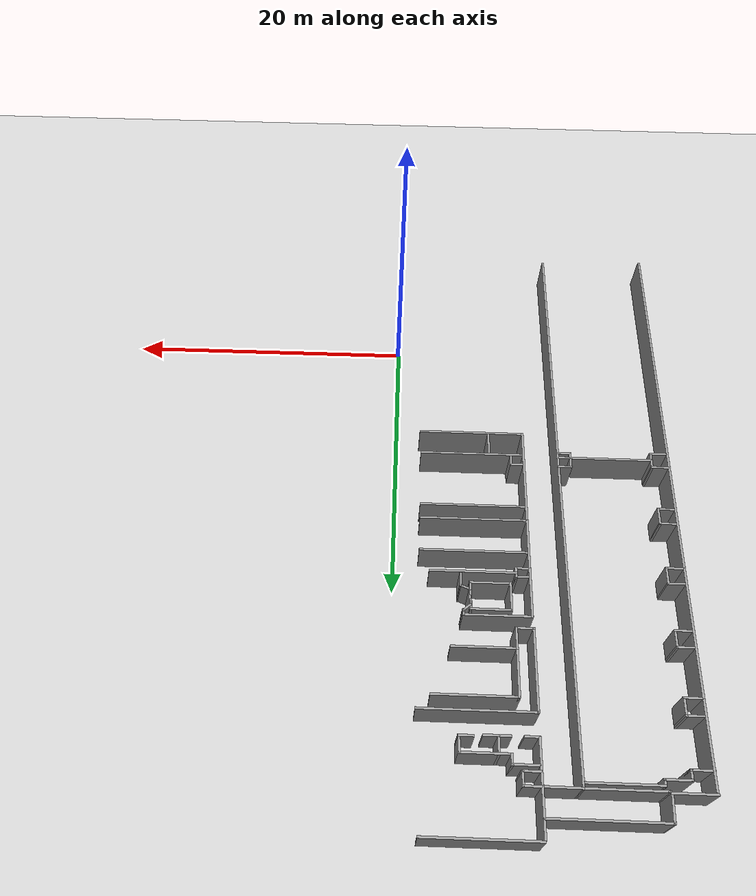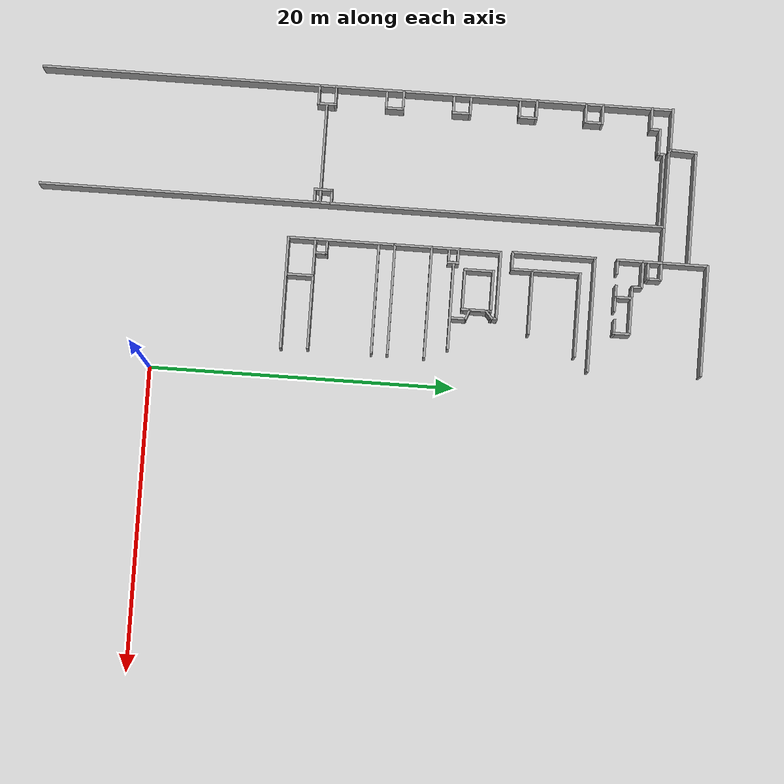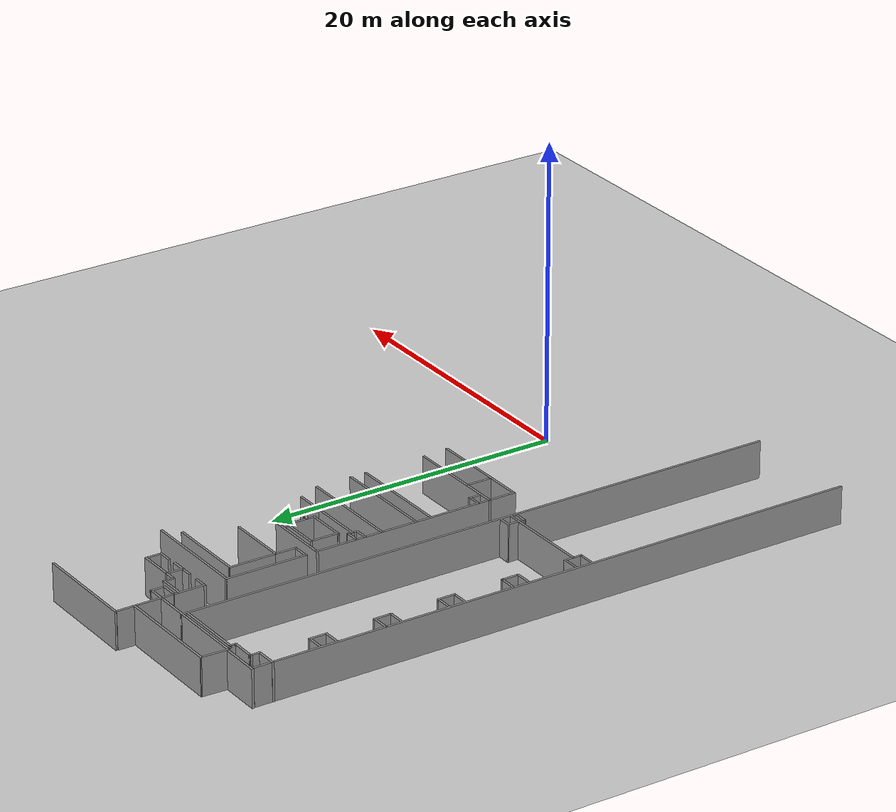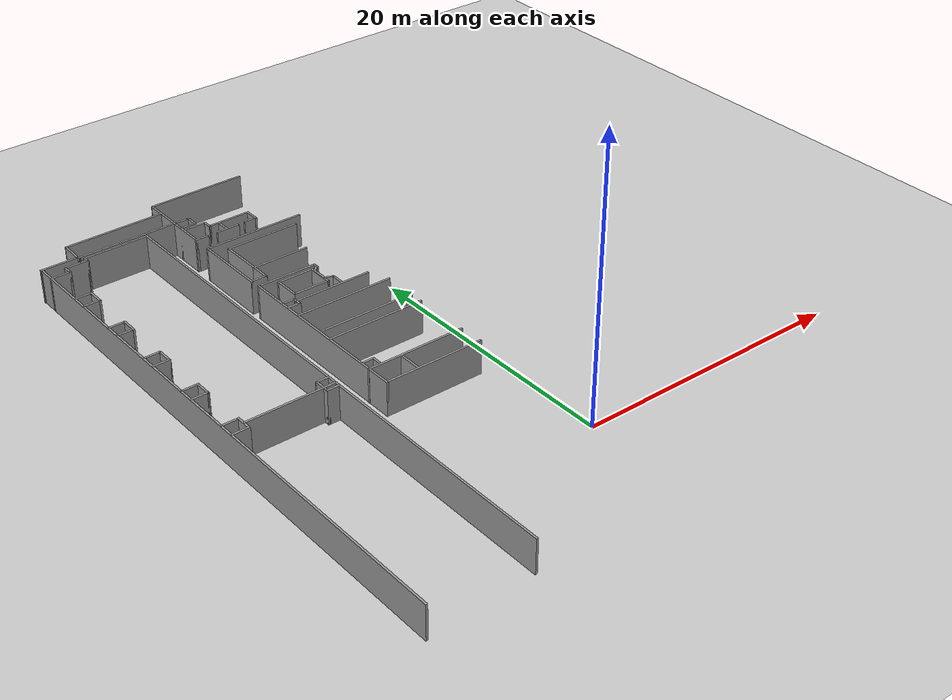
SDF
<sdf version="1.7">
 <world name="default">
  <model name="ground_plane">
   <static>1</static>
   <link name="link">
    <collision name="collision">
     <geometry><plane><normal>0 0 1</normal><size>100 100</size></plane></geometry>
     <surface>
      <contact><collide_bitmask>65535</collide_bitmask></contact>
      <friction><ode><mu>100</mu><mu2>50</mu2></ode></friction>
     </surface>
    </collision>
    <visual name="visual">
     <cast_shadows>0</cast_shadows>
     <geometry><plane><normal>0 0 1</normal><size>100 100</size></plane></geometry>
     <material>
      <script><uri>file://media/materials/scripts/gazebo.material</uri><name>Gazebo/Grey</name></script>
     </material>
    </visual>
   </link>
  </model>
  <model name="Tsudanuma_2-3-without_door">
   <pose>11.8595 12.3796 0 0 -0 0</pose>
   <link name="Wall_0">
    <collision name="Wall_0_Collision">
     <geometry><box><size>41.115 0.15 2.5</size></box></geometry>
     <pose>0 0 1.25 0 -0 0</pose>
    </collision>
    <visual name="Wall_0_Visual">
     <pose>0 0 1.25 0 -0 0</pose>
     <geometry><box><size>41.115 0.15 2.5</size></box></geometry>
     <material>
      <script><uri>file://media/materials/scripts/gazebo.material</uri><name>Gazebo/Grey</name></script>
      <ambient>1 1 1 1</ambient>
     </material>
     <meta><layer>0</layer></meta>
    </visual>
    <pose>-30.8385 -0.07469 0 0 -0 -1.5708</pose>
   </link>
   <link name="Wall_102">
    <collision name="Wall_102_Collision">
     <geometry><box><size>1.25 0.15 2.5</size></box></geometry>
     <pose>0 0 1.25 0 -0 0</pose>
    </collision>
    <visual name="Wall_102_Visual">
     <pose>0 0 1.25 0 -0 0</pose>
     <geometry><box><size>1.25 0.15 2.5</size></box></geometry>
     <material>
      <script><uri>file://media/materials/scripts/gazebo.material</uri><name>Gazebo/Grey</name></script>
      <ambient>1 1 1 1</ambient>
     </material>
     <meta><layer>0</layer></meta>
    </visual>
    <pose>-20.2708 10.8167 0 0 -0 0</pose>
   </link>
   <link name="Wall_103">
    <collision name="Wall_103_Collision">
     <geometry><box><size>1.5 0.15 2.5</size></box></geometry>
     <pose>0 0 1.25 0 -0 0</pose>
    </collision>
    <visual name="Wall_103_Visual">
     <pose>0 0 1.25 0 -0 0</pose>
     <geometry><box><size>1.5 0.15 2.5</size></box></geometry>
     <material>
      <script><uri>file://media/materials/scripts/gazebo.material</uri><name>Gazebo/Grey</name></script>
      <ambient>1 1 1 1</ambient>
     </material>
     <meta><layer>0</layer></meta>
    </visual>
    <pose>-19.7208 11.4917 0 0 -0 1.5708</pose>
   </link>
   <link name="Wall_104">
    <collision name="Wall_104_Collision">
     <geometry><box><size>4.25 0.15 2.5</size></box></geometry>
     <pose>0 0 1.25 0 -0 0</pose>
    </collision>
    <visual name="Wall_104_Visual">
     <pose>0 0 1.25 0 -0 0</pose>
     <geometry><box><size>4.25 0.15 2.5</size></box></geometry>
     <material>
      <script><uri>file://media/materials/scripts/gazebo.material</uri><name>Gazebo/Grey</name></script>
      <ambient>1 1 1 1</ambient>
     </material>
     <meta><layer>0</layer></meta>
    </visual>
    <pose>-17.6708 12.1667 0 0 -0 0</pose>
   </link>
   <link name="Wall_106">
    <collision name="Wall_106_Collision">
     <geometry><box><size>3.25 0.15 2.5</size></box></geometry>
     <pose>0 0 1.25 0 -0 0</pose>
    </collision>
    <visual name="Wall_106_Visual">
     <pose>0 0 1.25 0 -0 0</pose>
     <geometry><box><size>3.25 0.15 2.5</size></box></geometry>
     <material>
      <script><uri>file://media/materials/scripts/gazebo.material</uri><name>Gazebo/Grey</name></script>
      <ambient>1 1 1 1</ambient>
     </material>
     <meta><layer>0</layer></meta>
    </visual>
    <pose>-19.7208 13.7167 0 0 -0 1.5708</pose>
   </link>
   <link name="Wall_107">
    <collision name="Wall_107_Collision">
     <geometry><box><size>5.5 0.15 2.5</size></box></geometry>
     <pose>0 0 1.25 0 -0 0</pose>
    </collision>
    <visual name="Wall_107_Visual">
     <pose>0 0 1.25 0 -0 0</pose>
     <geometry><box><size>5.5 0.15 2.5</size></box></geometry>
     <material>
      <script><uri>file://media/materials/scripts/gazebo.material</uri><name>Gazebo/Grey</name></script>
      <ambient>1 1 1 1</ambient>
     </material>
     <meta><layer>0</layer></meta>
    </visual>
    <pose>-17.0458 15.2667 0 0 -0 0</pose>
   </link>
   <link name="Wall_114">
    <collision name="Wall_114_Collision">
     <geometry><box><size>7.5 0.15 2.5</size></box></geometry>
     <pose>0 0 1.25 0 -0 0</pose>
    </collision>
    <visual name="Wall_114_Visual">
     <pose>0 0 1.25 0 -0 0</pose>
     <geometry><box><size>7.5 0.15 2.5</size></box></geometry>
     <material>
      <script><uri>file://media/materials/scripts/gazebo.material</uri><name>Gazebo/Grey</name></script>
      <ambient>1 1 1 1</ambient>
     </material>
     <meta><layer>0</layer></meta>
    </visual>
    <pose>-17.1458 16.1667 0 0 -0 0</pose>
   </link>
   <link name="Wall_116">
    <collision name="Wall_116_Collision">
     <geometry><box><size>0.715508 0.15 2.5</size></box></geometry>
     <pose>0 0 1.25 0 -0 0</pose>
    </collision>
    <visual name="Wall_116_Visual">
     <pose>0 0 1.25 0 -0 0</pose>
     <geometry><box><size>0.715508 0.15 2.5</size></box></geometry>
     <material>
      <script><uri>file://media/materials/scripts/gazebo.material</uri><name>Gazebo/Grey</name></script>
      <ambient>1 1 1 1</ambient>
     </material>
     <meta><layer>0</layer></meta>
    </visual>
    <pose>-16.6297 9.54241 0 0 -0 0.731865</pose>
   </link>
   <link name="Wall_118">
    <collision name="Wall_118_Collision">
     <geometry><box><size>0.5 0.15 2.5</size></box></geometry>
     <pose>0 0 1.25 0 -0 0</pose>
    </collision>
    <visual name="Wall_118_Visual">
     <pose>0 0 1.25 0 -0 0</pose>
     <geometry><box><size>0.5 0.15 2.5</size></box></geometry>
     <material>
      <script><uri>file://media/materials/scripts/gazebo.material</uri><name>Gazebo/Grey</name></script>
      <ambient>1 1 1 1</ambient>
     </material>
     <meta><layer>0</layer></meta>
    </visual>
    <pose>-16.4194 9.84917 0 0 -0 1.5708</pose>
   </link>
   <link name="Wall_119">
    <collision name="Wall_119_Collision">
     <geometry><box><size>4.5 0.15 2.5</size></box></geometry>
     <pose>0 0 1.25 0 -0 0</pose>
    </collision>
    <visual name="Wall_119_Visual">
     <pose>0 0 1.25 0 -0 0</pose>
     <geometry><box><size>4.5 0.15 2.5</size></box></geometry>
     <material>
      <script><uri>file://media/materials/scripts/gazebo.material</uri><name>Gazebo/Grey</name></script>
      <ambient>1 1 1 1</ambient>
     </material>
     <meta><layer>0</layer></meta>
    </visual>
    <pose>-18.5944 10.0242 0 0 -0 3.14159</pose>
   </link>
   <link name="Wall_120">
    <collision name="Wall_120_Collision">
     <geometry><box><size>14 0.15 2.5</size></box></geometry>
     <pose>0 0 1.25 0 -0 0</pose>
    </collision>
    <visual name="Wall_120_Visual">
     <pose>0 0 1.25 0 -0 0</pose>
     <geometry><box><size>14 0.15 2.5</size></box></geometry>
     <material>
      <script><uri>file://media/materials/scripts/gazebo.material</uri><name>Gazebo/Grey</name></script>
      <ambient>1 1 1 1</ambient>
     </material>
     <meta><layer>0</layer></meta>
    </visual>
    <pose>-20.7694 3.09917 0 0 -0 -1.5708</pose>
   </link>
   <link name="Wall_121">
    <collision name="Wall_121_Collision">
     <geometry><box><size>7.32925 0.15 2.5</size></box></geometry>
     <pose>0 0 1.25 0 -0 0</pose>
    </collision>
    <visual name="Wall_121_Visual">
     <pose>0 0 1.25 0 -0 0</pose>
     <geometry><box><size>7.32925 0.15 2.5</size></box></geometry>
     <material>
      <script><uri>file://media/materials/scripts/gazebo.material</uri><name>Gazebo/Grey</name></script>
      <ambient>1 1 1 1</ambient>
     </material>
     <meta><layer>0</layer></meta>
    </visual>
    <pose>-17.1797 -3.82583 0 0 -0 0</pose>
   </link>
   <link name="Wall_124">
    <collision name="Wall_124_Collision">
     <geometry><box><size>0.765048 0.15 2.5</size></box></geometry>
     <pose>0 0 1.25 0 -0 0</pose>
    </collision>
    <visual name="Wall_124_Visual">
     <pose>0 0 1.25 0 -0 0</pose>
     <geometry><box><size>0.765048 0.15 2.5</size></box></geometry>
     <material>
      <script><uri>file://media/materials/scripts/gazebo.material</uri><name>Gazebo/Grey</name></script>
      <ambient>1 1 1 1</ambient>
     </material>
     <meta><layer>0</layer></meta>
    </visual>
    <pose>-16.5547 8.13882 0 0 -0 2.75957</pose>
   </link>
   <link name="Wall_128">
    <collision name="Wall_128_Collision">
     <geometry><box><size>1.25 0.15 2.5</size></box></geometry>
     <pose>0 0 1.25 0 -0 0</pose>
    </collision>
    <visual name="Wall_128_Visual">
     <pose>0 0 1.25 0 -0 0</pose>
     <geometry><box><size>1.25 0.15 2.5</size></box></geometry>
     <material>
      <script><uri>file://media/materials/scripts/gazebo.material</uri><name>Gazebo/Grey</name></script>
      <ambient>1 1 1 1</ambient>
     </material>
     <meta><layer>0</layer></meta>
    </visual>
    <pose>-16.8401 8.80346 0 0 -0 1.5708</pose>
   </link>
   <link name="Wall_130">
    <collision name="Wall_130_Collision">
     <geometry><box><size>7.25 0.15 2.5</size></box></geometry>
     <pose>0 0 1.25 0 -0 0</pose>
    </collision>
    <visual name="Wall_130_Visual">
     <pose>0 0 1.25 0 -0 0</pose>
     <geometry><box><size>7.25 0.15 2.5</size></box></geometry>
     <material>
      <script><uri>file://media/materials/scripts/gazebo.material</uri><name>Gazebo/Grey</name></script>
      <ambient>1 1 1 1</ambient>
     </material>
     <meta><layer>0</layer></meta>
    </visual>
    <pose>-17.2305 -2.06927 0 0 -0 0</pose>
   </link>
   <link name="Wall_132">
    <collision name="Wall_132_Collision">
     <geometry><box><size>1 0.15 2.5</size></box></geometry>
     <pose>0 0 1.25 0 -0 0</pose>
    </collision>
    <visual name="Wall_132_Visual">
     <pose>0 0 1.25 0 -0 0</pose>
     <geometry><box><size>1 0.15 2.5</size></box></geometry>
     <material>
      <script><uri>file://media/materials/scripts/gazebo.material</uri><name>Gazebo/Grey</name></script>
      <ambient>1 1 1 1</ambient>
     </material>
     <meta><layer>0</layer></meta>
    </visual>
    <pose>-20.3175 -1.29143 0 0 -0 0</pose>
   </link>
   <link name="Wall_133">
    <collision name="Wall_133_Collision">
     <geometry><box><size>0.75 0.15 2.5</size></box></geometry>
     <pose>0 0 1.25 0 -0 0</pose>
    </collision>
    <visual name="Wall_133_Visual">
     <pose>0 0 1.25 0 -0 0</pose>
     <geometry><box><size>0.75 0.15 2.5</size></box></geometry>
     <material>
      <script><uri>file://media/materials/scripts/gazebo.material</uri><name>Gazebo/Grey</name></script>
      <ambient>1 1 1 1</ambient>
     </material>
     <meta><layer>0</layer></meta>
    </visual>
    <pose>-19.8925 -1.59143 0 0 -0 -1.5708</pose>
   </link>
   <link name="Wall_138">
    <collision name="Wall_138_Collision">
     <geometry><box><size>1.75 0.15 2.5</size></box></geometry>
     <pose>0 0 1.25 0 -0 0</pose>
    </collision>
    <visual name="Wall_138_Visual">
     <pose>0 0 1.25 0 -0 0</pose>
     <geometry><box><size>1.75 0.15 2.5</size></box></geometry>
     <material>
      <script><uri>file://media/materials/scripts/gazebo.material</uri><name>Gazebo/Grey</name></script>
      <ambient>1 1 1 1</ambient>
     </material>
     <meta><layer>0</layer></meta>
    </visual>
    <pose>-18.3711 -2.90721 0 0 -0 -1.5708</pose>
   </link>
   <link name="Wall_18">
    <collision name="Wall_18_Collision">
     <geometry><box><size>7.25 0.15 2.5</size></box></geometry>
     <pose>0 0 1.25 0 -0 0</pose>
    </collision>
    <visual name="Wall_18_Visual">
     <pose>0 0 1.25 0 -0 0</pose>
     <geometry><box><size>7.25 0.15 2.5</size></box></geometry>
     <material>
      <script><uri>file://media/materials/scripts/gazebo.material</uri><name>Gazebo/Grey</name></script>
      <ambient>1 1 1 1</ambient>
     </material>
     <meta><layer>0</layer></meta>
    </visual>
    <pose>-17.2221 23.51 0 0 -0 3.14159</pose>
   </link>
   <link name="Wall_22">
    <collision name="Wall_22_Collision">
     <geometry><box><size>2.8 0.15 2.5</size></box></geometry>
     <pose>0 0 1.25 0 -0 0</pose>
    </collision>
    <visual name="Wall_22_Visual">
     <pose>0 0 1.25 0 -0 0</pose>
     <geometry><box><size>2.8 0.15 2.5</size></box></geometry>
     <material>
      <script><uri>file://media/materials/scripts/gazebo.material</uri><name>Gazebo/Grey</name></script>
      <ambient>1 1 1 1</ambient>
     </material>
     <meta><layer>0</layer></meta>
    </visual>
    <pose>-29.553 20.5846 0 0 -0 3.14159</pose>
   </link>
   <link name="Wall_32">
    <collision name="Wall_32_Collision">
     <geometry><box><size>40.75 0.15 2.5</size></box></geometry>
     <pose>0 0 1.25 0 -0 0</pose>
    </collision>
    <visual name="Wall_32_Visual">
     <pose>0 0 1.25 0 -0 0</pose>
     <geometry><box><size>40.75 0.15 2.5</size></box></geometry>
     <material>
      <script><uri>file://media/materials/scripts/gazebo.material</uri><name>Gazebo/Grey</name></script>
      <ambient>1 1 1 1</ambient>
     </material>
     <meta><layer>0</layer></meta>
    </visual>
    <pose>-23.1721 0.089962 0 0 -0 1.5708</pose>
   </link>
   <link name="Wall_38">
    <collision name="Wall_38_Collision">
     <geometry><box><size>1 0.15 2.5</size></box></geometry>
     <pose>0 0 1.25 0 -0 0</pose>
    </collision>
    <visual name="Wall_38_Visual">
     <pose>0 0 1.25 0 -0 0</pose>
     <geometry><box><size>1 0.15 2.5</size></box></geometry>
     <material>
      <script><uri>file://media/materials/scripts/gazebo.material</uri><name>Gazebo/Grey</name></script>
      <ambient>1 1 1 1</ambient>
     </material>
     <meta><layer>0</layer></meta>
    </visual>
    <pose>-20.3843 17.647 0 0 -0 3.14159</pose>
   </link>
   <link name="Wall_39">
    <collision name="Wall_39_Collision">
     <geometry><box><size>3 0.15 2.5</size></box></geometry>
     <pose>0 0 1.25 0 -0 0</pose>
    </collision>
    <visual name="Wall_39_Visual">
     <pose>0 0 1.25 0 -0 0</pose>
     <geometry><box><size>3 0.15 2.5</size></box></geometry>
     <material>
      <script><uri>file://media/materials/scripts/gazebo.material</uri><name>Gazebo/Grey</name></script>
      <ambient>1 1 1 1</ambient>
     </material>
     <meta><layer>0</layer></meta>
    </visual>
    <pose>-20.8093 19.072 0 0 -0 1.5708</pose>
   </link>
   <link name="Wall_40">
    <collision name="Wall_40_Collision">
     <geometry><box><size>2.49537 0.15 2.5</size></box></geometry>
     <pose>0 0 1.25 0 -0 0</pose>
    </collision>
    <visual name="Wall_40_Visual">
     <pose>0 0 1.25 0 -0 0</pose>
     <geometry><box><size>2.49537 0.15 2.5</size></box></geometry>
     <material>
      <script><uri>file://media/materials/scripts/gazebo.material</uri><name>Gazebo/Grey</name></script>
      <ambient>1 1 1 1</ambient>
     </material>
     <meta><layer>0</layer></meta>
    </visual>
    <pose>-21.9819 20.5016 0 0 -0 3.13764</pose>
   </link>
   <link name="Wall_42">
    <collision name="Wall_42_Collision">
     <geometry><box><size>3.05 0.15 2.5</size></box></geometry>
     <pose>0 0 1.25 0 -0 0</pose>
    </collision>
    <visual name="Wall_42_Visual">
     <pose>0 0 1.25 0 -0 0</pose>
     <geometry><box><size>3.05 0.15 2.5</size></box></geometry>
     <material>
      <script><uri>file://media/materials/scripts/gazebo.material</uri><name>Gazebo/Grey</name></script>
      <ambient>1 1 1 1</ambient>
     </material>
     <meta><layer>0</layer></meta>
    </visual>
    <pose>-20.8093 21.947 0 0 -0 1.5708</pose>
   </link>
   <link name="Wall_44">
    <collision name="Wall_44_Collision">
     <geometry><box><size>1.75 0.15 2.5</size></box></geometry>
     <pose>0 0 1.25 0 -0 0</pose>
    </collision>
    <visual name="Wall_44_Visual">
     <pose>0 0 1.25 0 -0 0</pose>
     <geometry><box><size>1.75 0.15 2.5</size></box></geometry>
     <material>
      <script><uri>file://media/materials/scripts/gazebo.material</uri><name>Gazebo/Grey</name></script>
      <ambient>1 1 1 1</ambient>
     </material>
     <meta><layer>0</layer></meta>
    </visual>
    <pose>-18.3034 17.647 0 0 -0 0</pose>
   </link>
   <link name="Wall_468">
    <collision name="Wall_468_Collision">
     <geometry><box><size>1.25 0.15 2.5</size></box></geometry>
     <pose>0 0 1.25 0 -0 0</pose>
    </collision>
    <visual name="Wall_468_Visual">
     <pose>0 0 1.25 0 -0 0</pose>
     <geometry><box><size>1.25 0.15 2.5</size></box></geometry>
     <material>
      <script><uri>file://media/materials/scripts/gazebo.material</uri><name>Gazebo/Grey</name></script>
      <ambient>1 1 1 1</ambient>
     </material>
     <meta><layer>0</layer></meta>
    </visual>
    <pose>-30.2135 -2.5084 0 0 -0 0</pose>
   </link>
   <link name="Wall_470">
    <collision name="Wall_470_Collision">
     <geometry><box><size>1.25 0.15 2.5</size></box></geometry>
     <pose>0 0 1.25 0 -0 0</pose>
    </collision>
    <visual name="Wall_470_Visual">
     <pose>0 0 1.25 0 -0 0</pose>
     <geometry><box><size>1.25 0.15 2.5</size></box></geometry>
     <material>
      <script><uri>file://media/materials/scripts/gazebo.material</uri><name>Gazebo/Grey</name></script>
      <ambient>1 1 1 1</ambient>
     </material>
     <meta><layer>0</layer></meta>
    </visual>
    <pose>-29.6635 -1.9584 0 0 -0 1.5708</pose>
   </link>
   <link name="Wall_471">
    <collision name="Wall_471_Collision">
     <geometry><box><size>1.25 0.15 2.5</size></box></geometry>
     <pose>0 0 1.25 0 -0 0</pose>
    </collision>
    <visual name="Wall_471_Visual">
     <pose>0 0 1.25 0 -0 0</pose>
     <geometry><box><size>1.25 0.15 2.5</size></box></geometry>
     <material>
      <script><uri>file://media/materials/scripts/gazebo.material</uri><name>Gazebo/Grey</name></script>
      <ambient>1 1 1 1</ambient>
     </material>
     <meta><layer>0</layer></meta>
    </visual>
    <pose>-30.2135 -1.4084 0 0 -0 3.14159</pose>
   </link>
   <link name="Wall_474">
    <collision name="Wall_474_Collision">
     <geometry><box><size>1.25 0.15 2.5</size></box></geometry>
     <pose>0 0 1.25 0 -0 0</pose>
    </collision>
    <visual name="Wall_474_Visual">
     <pose>0 0 1.25 0 -0 0</pose>
     <geometry><box><size>1.25 0.15 2.5</size></box></geometry>
     <material>
      <script><uri>file://media/materials/scripts/gazebo.material</uri><name>Gazebo/Grey</name></script>
      <ambient>1 1 1 1</ambient>
     </material>
     <meta><layer>0</layer></meta>
    </visual>
    <pose>-30.2299 1.90612 0 0 -0 0</pose>
   </link>
   <link name="Wall_475">
    <collision name="Wall_475_Collision">
     <geometry><box><size>1.25 0.15 2.5</size></box></geometry>
     <pose>0 0 1.25 0 -0 0</pose>
    </collision>
    <visual name="Wall_475_Visual">
     <pose>0 0 1.25 0 -0 0</pose>
     <geometry><box><size>1.25 0.15 2.5</size></box></geometry>
     <material>
      <script><uri>file://media/materials/scripts/gazebo.material</uri><name>Gazebo/Grey</name></script>
      <ambient>1 1 1 1</ambient>
     </material>
     <meta><layer>0</layer></meta>
    </visual>
    <pose>-29.6799 2.45612 0 0 -0 1.5708</pose>
   </link>
   <link name="Wall_476">
    <collision name="Wall_476_Collision">
     <geometry><box><size>1.25 0.15 2.5</size></box></geometry>
     <pose>0 0 1.25 0 -0 0</pose>
    </collision>
    <visual name="Wall_476_Visual">
     <pose>0 0 1.25 0 -0 0</pose>
     <geometry><box><size>1.25 0.15 2.5</size></box></geometry>
     <material>
      <script><uri>file://media/materials/scripts/gazebo.material</uri><name>Gazebo/Grey</name></script>
      <ambient>1 1 1 1</ambient>
     </material>
     <meta><layer>0</layer></meta>
    </visual>
    <pose>-30.2299 3.00612 0 0 -0 3.14159</pose>
   </link>
   <link name="Wall_478">
    <collision name="Wall_478_Collision">
     <geometry><box><size>1.25 0.15 2.5</size></box></geometry>
     <pose>0 0 1.25 0 -0 0</pose>
    </collision>
    <visual name="Wall_478_Visual">
     <pose>0 0 1.25 0 -0 0</pose>
     <geometry><box><size>1.25 0.15 2.5</size></box></geometry>
     <material>
      <script><uri>file://media/materials/scripts/gazebo.material</uri><name>Gazebo/Grey</name></script>
      <ambient>1 1 1 1</ambient>
     </material>
     <meta><layer>0</layer></meta>
    </visual>
    <pose>-30.2299 6.30419 0 0 -0 0</pose>
   </link>
   <link name="Wall_479">
    <collision name="Wall_479_Collision">
     <geometry><box><size>1.25 0.15 2.5</size></box></geometry>
     <pose>0 0 1.25 0 -0 0</pose>
    </collision>
    <visual name="Wall_479_Visual">
     <pose>0 0 1.25 0 -0 0</pose>
     <geometry><box><size>1.25 0.15 2.5</size></box></geometry>
     <material>
      <script><uri>file://media/materials/scripts/gazebo.material</uri><name>Gazebo/Grey</name></script>
      <ambient>1 1 1 1</ambient>
     </material>
     <meta><layer>0</layer></meta>
    </visual>
    <pose>-29.6799 6.85419 0 0 -0 1.5708</pose>
   </link>
   <link name="Wall_480">
    <collision name="Wall_480_Collision">
     <geometry><box><size>1.25 0.15 2.5</size></box></geometry>
     <pose>0 0 1.25 0 -0 0</pose>
    </collision>
    <visual name="Wall_480_Visual">
     <pose>0 0 1.25 0 -0 0</pose>
     <geometry><box><size>1.25 0.15 2.5</size></box></geometry>
     <material>
      <script><uri>file://media/materials/scripts/gazebo.material</uri><name>Gazebo/Grey</name></script>
      <ambient>1 1 1 1</ambient>
     </material>
     <meta><layer>0</layer></meta>
    </visual>
    <pose>-30.2299 7.40419 0 0 -0 3.14159</pose>
   </link>
   <link name="Wall_482">
    <collision name="Wall_482_Collision">
     <geometry><box><size>1.25 0.15 2.5</size></box></geometry>
     <pose>0 0 1.25 0 -0 0</pose>
    </collision>
    <visual name="Wall_482_Visual">
     <pose>0 0 1.25 0 -0 0</pose>
     <geometry><box><size>1.25 0.15 2.5</size></box></geometry>
     <material>
      <script><uri>file://media/materials/scripts/gazebo.material</uri><name>Gazebo/Grey</name></script>
      <ambient>1 1 1 1</ambient>
     </material>
     <meta><layer>0</layer></meta>
    </visual>
    <pose>-30.2381 10.6201 0 0 -0 0</pose>
   </link>
   <link name="Wall_483">
    <collision name="Wall_483_Collision">
     <geometry><box><size>1.25 0.15 2.5</size></box></geometry>
     <pose>0 0 1.25 0 -0 0</pose>
    </collision>
    <visual name="Wall_483_Visual">
     <pose>0 0 1.25 0 -0 0</pose>
     <geometry><box><size>1.25 0.15 2.5</size></box></geometry>
     <material>
      <script><uri>file://media/materials/scripts/gazebo.material</uri><name>Gazebo/Grey</name></script>
      <ambient>1 1 1 1</ambient>
     </material>
     <meta><layer>0</layer></meta>
    </visual>
    <pose>-29.6881 11.1701 0 0 -0 1.5708</pose>
   </link>
   <link name="Wall_484">
    <collision name="Wall_484_Collision">
     <geometry><box><size>1.25 0.15 2.5</size></box></geometry>
     <pose>0 0 1.25 0 -0 0</pose>
    </collision>
    <visual name="Wall_484_Visual">
     <pose>0 0 1.25 0 -0 0</pose>
     <geometry><box><size>1.25 0.15 2.5</size></box></geometry>
     <material>
      <script><uri>file://media/materials/scripts/gazebo.material</uri><name>Gazebo/Grey</name></script>
      <ambient>1 1 1 1</ambient>
     </material>
     <meta><layer>0</layer></meta>
    </visual>
    <pose>-30.2381 11.7201 0 0 -0 3.14159</pose>
   </link>
   <link name="Wall_486">
    <collision name="Wall_486_Collision">
     <geometry><box><size>1.25 0.15 2.5</size></box></geometry>
     <pose>0 0 1.25 0 -0 0</pose>
    </collision>
    <visual name="Wall_486_Visual">
     <pose>0 0 1.25 0 -0 0</pose>
     <geometry><box><size>1.25 0.15 2.5</size></box></geometry>
     <material>
      <script><uri>file://media/materials/scripts/gazebo.material</uri><name>Gazebo/Grey</name></script>
      <ambient>1 1 1 1</ambient>
     </material>
     <meta><layer>0</layer></meta>
    </visual>
    <pose>-30.2217 14.9359 0 0 -0 0</pose>
   </link>
   <link name="Wall_487">
    <collision name="Wall_487_Collision">
     <geometry><box><size>1.25 0.15 2.5</size></box></geometry>
     <pose>0 0 1.25 0 -0 0</pose>
    </collision>
    <visual name="Wall_487_Visual">
     <pose>0 0 1.25 0 -0 0</pose>
     <geometry><box><size>1.25 0.15 2.5</size></box></geometry>
     <material>
      <script><uri>file://media/materials/scripts/gazebo.material</uri><name>Gazebo/Grey</name></script>
      <ambient>1 1 1 1</ambient>
     </material>
     <meta><layer>0</layer></meta>
    </visual>
    <pose>-29.6717 15.4859 0 0 -0 1.5708</pose>
   </link>
   <link name="Wall_488">
    <collision name="Wall_488_Collision">
     <geometry><box><size>1.25 0.15 2.5</size></box></geometry>
     <pose>0 0 1.25 0 -0 0</pose>
    </collision>
    <visual name="Wall_488_Visual">
     <pose>0 0 1.25 0 -0 0</pose>
     <geometry><box><size>1.25 0.15 2.5</size></box></geometry>
     <material>
      <script><uri>file://media/materials/scripts/gazebo.material</uri><name>Gazebo/Grey</name></script>
      <ambient>1 1 1 1</ambient>
     </material>
     <meta><layer>0</layer></meta>
    </visual>
    <pose>-30.2217 16.0359 0 0 -0 3.14159</pose>
   </link>
   <link name="Wall_49">
    <collision name="Wall_49_Collision">
     <geometry><box><size>1.75 0.15 2.5</size></box></geometry>
     <pose>0 0 1.25 0 -0 0</pose>
    </collision>
    <visual name="Wall_49_Visual">
     <pose>0 0 1.25 0 -0 0</pose>
     <geometry><box><size>1.75 0.15 2.5</size></box></geometry>
     <material>
      <script><uri>file://media/materials/scripts/gazebo.material</uri><name>Gazebo/Grey</name></script>
      <ambient>1 1 1 1</ambient>
     </material>
     <meta><layer>0</layer></meta>
    </visual>
    <pose>-19.9221 19.3029 0 0 -0 0</pose>
   </link>
   <link name="Wall_490">
    <collision name="Wall_490_Collision">
     <geometry><box><size>1.5 0.15 2.5</size></box></geometry>
     <pose>0 0 1.25 0 -0 0</pose>
    </collision>
    <visual name="Wall_490_Visual">
     <pose>0 0 1.25 0 -0 0</pose>
     <geometry><box><size>1.5 0.15 2.5</size></box></geometry>
     <material>
      <script><uri>file://media/materials/scripts/gazebo.material</uri><name>Gazebo/Grey</name></script>
      <ambient>1 1 1 1</ambient>
     </material>
     <meta><layer>0</layer></meta>
    </visual>
    <pose>-30.1789 19.2353 0 0 -0 0</pose>
   </link>
   <link name="Wall_491">
    <collision name="Wall_491_Collision">
     <geometry><box><size>0.75 0.15 2.5</size></box></geometry>
     <pose>0 0 1.25 0 -0 0</pose>
    </collision>
    <visual name="Wall_491_Visual">
     <pose>0 0 1.25 0 -0 0</pose>
     <geometry><box><size>0.75 0.15 2.5</size></box></geometry>
     <material>
      <script><uri>file://media/materials/scripts/gazebo.material</uri><name>Gazebo/Grey</name></script>
      <ambient>1 1 1 1</ambient>
     </material>
     <meta><layer>0</layer></meta>
    </visual>
    <pose>-29.5039 19.5353 0 0 -0 1.5708</pose>
   </link>
   <link name="Wall_492">
    <collision name="Wall_492_Collision">
     <geometry><box><size>1.75 0.15 2.5</size></box></geometry>
     <pose>0 0 1.25 0 -0 0</pose>
    </collision>
    <visual name="Wall_492_Visual">
     <pose>0 0 1.25 0 -0 0</pose>
     <geometry><box><size>1.75 0.15 2.5</size></box></geometry>
     <material>
      <script><uri>file://media/materials/scripts/gazebo.material</uri><name>Gazebo/Grey</name></script>
      <ambient>1 1 1 1</ambient>
     </material>
     <meta><layer>0</layer></meta>
    </visual>
    <pose>-28.7039 19.8353 0 0 -0 0</pose>
   </link>
   <link name="Wall_493">
    <collision name="Wall_493_Collision">
     <geometry><box><size>0.5 0.15 2.5</size></box></geometry>
     <pose>0 0 1.25 0 -0 0</pose>
    </collision>
    <visual name="Wall_493_Visual">
     <pose>0 0 1.25 0 -0 0</pose>
     <geometry><box><size>0.5 0.15 2.5</size></box></geometry>
     <material>
      <script><uri>file://media/materials/scripts/gazebo.material</uri><name>Gazebo/Grey</name></script>
      <ambient>1 1 1 1</ambient>
     </material>
     <meta><layer>0</layer></meta>
    </visual>
    <pose>-27.9039 20.0103 0 0 -0 1.5708</pose>
   </link>
   <link name="Wall_494">
    <collision name="Wall_494_Collision">
     <geometry><box><size>4.75 0.15 2.5</size></box></geometry>
     <pose>0 0 1.25 0 -0 0</pose>
    </collision>
    <visual name="Wall_494_Visual">
     <pose>0 0 1.25 0 -0 0</pose>
     <geometry><box><size>4.75 0.15 2.5</size></box></geometry>
     <material>
      <script><uri>file://media/materials/scripts/gazebo.material</uri><name>Gazebo/Grey</name></script>
      <ambient>1 1 1 1</ambient>
     </material>
     <meta><layer>0</layer></meta>
    </visual>
    <pose>-25.6039 20.1853 0 0 -0 0</pose>
   </link>
   <link name="Wall_496">
    <collision name="Wall_496_Collision">
     <geometry><box><size>5.111 0.15 2.5</size></box></geometry>
     <pose>0 0 1.25 0 -0 0</pose>
    </collision>
    <visual name="Wall_496_Visual">
     <pose>0 0 1.25 0 -0 0</pose>
     <geometry><box><size>5.111 0.15 2.5</size></box></geometry>
     <material>
      <script><uri>file://media/materials/scripts/gazebo.material</uri><name>Gazebo/Grey</name></script>
      <ambient>1 1 1 1</ambient>
     </material>
     <meta><layer>0</layer></meta>
    </visual>
    <pose>-25.6356 20.5062 0 0 -0 3.14159</pose>
   </link>
   <link name="Wall_498">
    <collision name="Wall_498_Collision">
     <geometry><box><size>0.286168 0.15 2.5</size></box></geometry>
     <pose>0 0 1.25 0 -0 0</pose>
    </collision>
    <visual name="Wall_498_Visual">
     <pose>0 0 1.25 0 -0 0</pose>
     <geometry><box><size>0.286168 0.15 2.5</size></box></geometry>
     <material>
      <script><uri>file://media/materials/scripts/gazebo.material</uri><name>Gazebo/Grey</name></script>
      <ambient>1 1 1 1</ambient>
     </material>
     <meta><layer>0</layer></meta>
    </visual>
    <pose>-28.1723 20.5454 0 0 -0 2.52842</pose>
   </link>
   <link name="Wall_50">
    <collision name="Wall_50_Collision">
     <geometry><box><size>0.75 0.15 2.5</size></box></geometry>
     <pose>0 0 1.25 0 -0 0</pose>
    </collision>
    <visual name="Wall_50_Visual">
     <pose>0 0 1.25 0 -0 0</pose>
     <geometry><box><size>0.75 0.15 2.5</size></box></geometry>
     <material>
      <script><uri>file://media/materials/scripts/gazebo.material</uri><name>Gazebo/Grey</name></script>
      <ambient>1 1 1 1</ambient>
     </material>
     <meta><layer>0</layer></meta>
    </visual>
    <pose>-19.1221 19.0029 0 0 -0 -1.5708</pose>
   </link>
   <link name="Wall_503">
    <collision name="Wall_503_Collision">
     <geometry><box><size>1 0.15 2.5</size></box></geometry>
     <pose>0 0 1.25 0 -0 0</pose>
    </collision>
    <visual name="Wall_503_Visual">
     <pose>0 0 1.25 0 -0 0</pose>
     <geometry><box><size>1 0.15 2.5</size></box></geometry>
     <material>
      <script><uri>file://media/materials/scripts/gazebo.material</uri><name>Gazebo/Grey</name></script>
      <ambient>1 1 1 1</ambient>
     </material>
     <meta><layer>0</layer></meta>
    </visual>
    <pose>-23.6051 -1.22621 0 0 -0 3.14159</pose>
   </link>
   <link name="Wall_504">
    <collision name="Wall_504_Collision">
     <geometry><box><size>1.25 0.15 2.5</size></box></geometry>
     <pose>0 0 1.25 0 -0 0</pose>
    </collision>
    <visual name="Wall_504_Visual">
     <pose>0 0 1.25 0 -0 0</pose>
     <geometry><box><size>1.25 0.15 2.5</size></box></geometry>
     <material>
      <script><uri>file://media/materials/scripts/gazebo.material</uri><name>Gazebo/Grey</name></script>
      <ambient>1 1 1 1</ambient>
     </material>
     <meta><layer>0</layer></meta>
    </visual>
    <pose>-24.0301 -1.77621 0 0 -0 -1.5708</pose>
   </link>
   <link name="Wall_505">
    <collision name="Wall_505_Collision">
     <geometry><box><size>1 0.15 2.5</size></box></geometry>
     <pose>0 0 1.25 0 -0 0</pose>
    </collision>
    <visual name="Wall_505_Visual">
     <pose>0 0 1.25 0 -0 0</pose>
     <geometry><box><size>1 0.15 2.5</size></box></geometry>
     <material>
      <script><uri>file://media/materials/scripts/gazebo.material</uri><name>Gazebo/Grey</name></script>
      <ambient>1 1 1 1</ambient>
     </material>
     <meta><layer>0</layer></meta>
    </visual>
    <pose>-23.6051 -2.32621 0 0 -0 0</pose>
   </link>
   <link name="Wall_508">
    <collision name="Wall_508_Collision">
     <geometry><box><size>7.5 0.15 2.5</size></box></geometry>
     <pose>0 0 1.25 0 -0 0</pose>
    </collision>
    <visual name="Wall_508_Visual">
     <pose>0 0 1.25 0 -0 0</pose>
     <geometry><box><size>7.5 0.15 2.5</size></box></geometry>
     <material>
      <script><uri>file://media/materials/scripts/gazebo.material</uri><name>Gazebo/Grey</name></script>
      <ambient>1 1 1 1</ambient>
     </material>
     <meta><layer>0</layer></meta>
    </visual>
    <pose>-24.4875 22.2557 0 0 -0 3.14159</pose>
   </link>
   <link name="Wall_509">
    <collision name="Wall_509_Collision">
     <geometry><box><size>1.82235 0.15 2.5</size></box></geometry>
     <pose>0 0 1.25 0 -0 0</pose>
    </collision>
    <visual name="Wall_509_Visual">
     <pose>0 0 1.25 0 -0 0</pose>
     <geometry><box><size>1.82235 0.15 2.5</size></box></geometry>
     <material>
      <script><uri>file://media/materials/scripts/gazebo.material</uri><name>Gazebo/Grey</name></script>
      <ambient>1 1 1 1</ambient>
     </material>
     <meta><layer>0</layer></meta>
    </visual>
    <pose>-28.1953 21.4201 0 0 -0 -1.60995</pose>
   </link>
   <link name="Wall_51">
    <collision name="Wall_51_Collision">
     <geometry><box><size>3.25 0.15 2.5</size></box></geometry>
     <pose>0 0 1.25 0 -0 0</pose>
    </collision>
    <visual name="Wall_51_Visual">
     <pose>0 0 1.25 0 -0 0</pose>
     <geometry><box><size>3.25 0.15 2.5</size></box></geometry>
     <material>
      <script><uri>file://media/materials/scripts/gazebo.material</uri><name>Gazebo/Grey</name></script>
      <ambient>1 1 1 1</ambient>
     </material>
     <meta><layer>0</layer></meta>
    </visual>
    <pose>-17.5721 18.7029 0 0 -0 0</pose>
   </link>
   <link name="Wall_511">
    <collision name="Wall_511_Collision">
     <geometry><box><size>7.25 0.15 2.5</size></box></geometry>
     <pose>0 0 1.25 0 -0 0</pose>
    </collision>
    <visual name="Wall_511_Visual">
     <pose>0 0 1.25 0 -0 0</pose>
     <geometry><box><size>7.25 0.15 2.5</size></box></geometry>
     <material>
      <script><uri>file://media/materials/scripts/gazebo.material</uri><name>Gazebo/Grey</name></script>
      <ambient>1 1 1 1</ambient>
     </material>
     <meta><layer>0</layer></meta>
    </visual>
    <pose>-17.2038 3.11898 0 0 -0 0</pose>
   </link>
   <link name="Wall_513">
    <collision name="Wall_513_Collision">
     <geometry><box><size>7.25 0.15 2.5</size></box></geometry>
     <pose>0 0 1.25 0 -0 0</pose>
    </collision>
    <visual name="Wall_513_Visual">
     <pose>0 0 1.25 0 -0 0</pose>
     <geometry><box><size>7.25 0.15 2.5</size></box></geometry>
     <material>
      <script><uri>file://media/materials/scripts/gazebo.material</uri><name>Gazebo/Grey</name></script>
      <ambient>1 1 1 1</ambient>
     </material>
     <meta><layer>0</layer></meta>
    </visual>
    <pose>-17.2038 2.07237 0 0 -0 0</pose>
   </link>
   <link name="Wall_515">
    <collision name="Wall_515_Collision">
     <geometry><box><size>7.25 0.15 2.5</size></box></geometry>
     <pose>0 0 1.25 0 -0 0</pose>
    </collision>
    <visual name="Wall_515_Visual">
     <pose>0 0 1.25 0 -0 0</pose>
     <geometry><box><size>7.25 0.15 2.5</size></box></geometry>
     <material>
      <script><uri>file://media/materials/scripts/gazebo.material</uri><name>Gazebo/Grey</name></script>
      <ambient>1 1 1 1</ambient>
     </material>
     <meta><layer>0</layer></meta>
    </visual>
    <pose>-17.1744 5.52177 0 0 -0 0</pose>
   </link>
   <link name="Wall_517">
    <collision name="Wall_517_Collision">
     <geometry><box><size>5.75 0.15 2.5</size></box></geometry>
     <pose>0 0 1.25 0 -0 0</pose>
    </collision>
    <visual name="Wall_517_Visual">
     <pose>0 0 1.25 0 -0 0</pose>
     <geometry><box><size>5.75 0.15 2.5</size></box></geometry>
     <material>
      <script><uri>file://media/materials/scripts/gazebo.material</uri><name>Gazebo/Grey</name></script>
      <ambient>1 1 1 1</ambient>
     </material>
     <meta><layer>0</layer></meta>
    </visual>
    <pose>-17.0841 7.01061 0 0 -0 0</pose>
   </link>
   <link name="Wall_519">
    <collision name="Wall_519_Collision">
     <geometry><box><size>1 0.15 2.5</size></box></geometry>
     <pose>0 0 1.25 0 -0 0</pose>
    </collision>
    <visual name="Wall_519_Visual">
     <pose>0 0 1.25 0 -0 0</pose>
     <geometry><box><size>1 0.15 2.5</size></box></geometry>
     <material>
      <script><uri>file://media/materials/scripts/gazebo.material</uri><name>Gazebo/Grey</name></script>
      <ambient>1 1 1 1</ambient>
     </material>
     <meta><layer>0</layer></meta>
    </visual>
    <pose>-20.2994 7.27595 0 0 -0 0</pose>
   </link>
   <link name="Wall_52">
    <collision name="Wall_52_Collision">
     <geometry><box><size>1.16745 0.15 2.5</size></box></geometry>
     <pose>0 0 1.25 0 -0 0</pose>
    </collision>
    <visual name="Wall_52_Visual">
     <pose>0 0 1.25 0 -0 0</pose>
     <geometry><box><size>1.16745 0.15 2.5</size></box></geometry>
     <material>
      <script><uri>file://media/materials/scripts/gazebo.material</uri><name>Gazebo/Grey</name></script>
      <ambient>1 1 1 1</ambient>
     </material>
     <meta><layer>0</layer></meta>
    </visual>
    <pose>-16.0221 18.1941 0 0 -0 -1.5708</pose>
   </link>
   <link name="Wall_520">
    <collision name="Wall_520_Collision">
     <geometry><box><size>0.75 0.15 2.5</size></box></geometry>
     <pose>0 0 1.25 0 -0 0</pose>
    </collision>
    <visual name="Wall_520_Visual">
     <pose>0 0 1.25 0 -0 0</pose>
     <geometry><box><size>0.75 0.15 2.5</size></box></geometry>
     <material>
      <script><uri>file://media/materials/scripts/gazebo.material</uri><name>Gazebo/Grey</name></script>
      <ambient>1 1 1 1</ambient>
     </material>
     <meta><layer>0</layer></meta>
    </visual>
    <pose>-19.8743 6.97595 0 0 -0 -1.5708</pose>
   </link>
   <link name="Wall_521">
    <collision name="Wall_521_Collision">
     <geometry><box><size>1 0.15 2.5</size></box></geometry>
     <pose>0 0 1.25 0 -0 0</pose>
    </collision>
    <visual name="Wall_521_Visual">
     <pose>0 0 1.25 0 -0 0</pose>
     <geometry><box><size>1 0.15 2.5</size></box></geometry>
     <material>
      <script><uri>file://media/materials/scripts/gazebo.material</uri><name>Gazebo/Grey</name></script>
      <ambient>1 1 1 1</ambient>
     </material>
     <meta><layer>0</layer></meta>
    </visual>
    <pose>-20.2994 6.67595 0 0 -0 3.14159</pose>
   </link>
   <link name="Wall_53">
    <collision name="Wall_53_Collision">
     <geometry><box><size>1 0.15 2.5</size></box></geometry>
     <pose>0 0 1.25 0 -0 0</pose>
    </collision>
    <visual name="Wall_53_Visual">
     <pose>0 0 1.25 0 -0 0</pose>
     <geometry><box><size>1 0.15 2.5</size></box></geometry>
     <material>
      <script><uri>file://media/materials/scripts/gazebo.material</uri><name>Gazebo/Grey</name></script>
      <ambient>1 1 1 1</ambient>
     </material>
     <meta><layer>0</layer></meta>
    </visual>
    <pose>-16.4471 17.704 0 0 -0 3.14159</pose>
   </link>
   <link name="Wall_530">
    <collision name="Wall_530_Collision">
     <geometry><box><size>2 0.15 2.5</size></box></geometry>
     <pose>0 0 1.25 0 -0 0</pose>
    </collision>
    <visual name="Wall_530_Visual">
     <pose>0 0 1.25 0 -0 0</pose>
     <geometry><box><size>2 0.15 2.5</size></box></geometry>
     <material>
      <script><uri>file://media/materials/scripts/gazebo.material</uri><name>Gazebo/Grey</name></script>
      <ambient>1 1 1 1</ambient>
     </material>
     <meta><layer>0</layer></meta>
    </visual>
    <pose>-16.8808 8.699 0 0 -0 -1.5708</pose>
   </link>
   <link name="Wall_532">
    <collision name="Wall_532_Collision">
     <geometry><box><size>2.75 0.15 2.5</size></box></geometry>
     <pose>0 0 1.25 0 -0 0</pose>
    </collision>
    <visual name="Wall_532_Visual">
     <pose>0 0 1.25 0 -0 0</pose>
     <geometry><box><size>2.75 0.15 2.5</size></box></geometry>
     <material>
      <script><uri>file://media/materials/scripts/gazebo.material</uri><name>Gazebo/Grey</name></script>
      <ambient>1 1 1 1</ambient>
     </material>
     <meta><layer>0</layer></meta>
    </visual>
    <pose>-18.1808 9.624 0 0 -0 3.14159</pose>
   </link>
   <link name="Wall_533">
    <collision name="Wall_533_Collision">
     <geometry><box><size>2 0.15 2.5</size></box></geometry>
     <pose>0 0 1.25 0 -0 0</pose>
    </collision>
    <visual name="Wall_533_Visual">
     <pose>0 0 1.25 0 -0 0</pose>
     <geometry><box><size>2 0.15 2.5</size></box></geometry>
     <material>
      <script><uri>file://media/materials/scripts/gazebo.material</uri><name>Gazebo/Grey</name></script>
      <ambient>1 1 1 1</ambient>
     </material>
     <meta><layer>0</layer></meta>
    </visual>
    <pose>-19.4808 8.699 0 0 -0 -1.5708</pose>
   </link>
   <link name="Wall_534">
    <collision name="Wall_534_Collision">
     <geometry><box><size>2.75 0.15 2.5</size></box></geometry>
     <pose>0 0 1.25 0 -0 0</pose>
    </collision>
    <visual name="Wall_534_Visual">
     <pose>0 0 1.25 0 -0 0</pose>
     <geometry><box><size>2.75 0.15 2.5</size></box></geometry>
     <material>
      <script><uri>file://media/materials/scripts/gazebo.material</uri><name>Gazebo/Grey</name></script>
      <ambient>1 1 1 1</ambient>
     </material>
     <meta><layer>0</layer></meta>
    </visual>
    <pose>-18.1808 7.774 0 0 -0 0</pose>
   </link>
   <link name="Wall_537">
    <collision name="Wall_537_Collision">
     <geometry><box><size>1 0.15 2.5</size></box></geometry>
     <pose>0 0 1.25 0 -0 0</pose>
    </collision>
    <visual name="Wall_537_Visual">
     <pose>0 0 1.25 0 -0 0</pose>
     <geometry><box><size>1 0.15 2.5</size></box></geometry>
     <material>
      <script><uri>file://media/materials/scripts/gazebo.material</uri><name>Gazebo/Grey</name></script>
      <ambient>1 1 1 1</ambient>
     </material>
     <meta><layer>0</layer></meta>
    </visual>
    <pose>-16.2694 7.59917 0 0 -0 -1.5708</pose>
   </link>
   <link name="Wall_55">
    <collision name="Wall_55_Collision">
     <geometry><box><size>1.2 0.15 2.5</size></box></geometry>
     <pose>0 0 1.25 0 -0 0</pose>
    </collision>
    <visual name="Wall_55_Visual">
     <pose>0 0 1.25 0 -0 0</pose>
     <geometry><box><size>1.2 0.15 2.5</size></box></geometry>
     <material>
      <script><uri>file://media/materials/scripts/gazebo.material</uri><name>Gazebo/Grey</name></script>
      <ambient>1 1 1 1</ambient>
     </material>
     <meta><layer>0</layer></meta>
    </visual>
    <pose>-18.3778 18.1814 0 0 -0 1.5708</pose>
   </link>
   <link name="Wall_57">
    <collision name="Wall_57_Collision">
     <geometry><box><size>1.25 0.15 2.5</size></box></geometry>
     <pose>0 0 1.25 0 -0 0</pose>
    </collision>
    <visual name="Wall_57_Visual">
     <pose>0 0 1.25 0 -0 0</pose>
     <geometry><box><size>1.25 0.15 2.5</size></box></geometry>
     <material>
      <script><uri>file://media/materials/scripts/gazebo.material</uri><name>Gazebo/Grey</name></script>
      <ambient>1 1 1 1</ambient>
     </material>
     <meta><layer>0</layer></meta>
    </visual>
    <pose>-20.2593 20.497 0 0 -0 0</pose>
   </link>
   <link name="Wall_58">
    <collision name="Wall_58_Collision">
     <geometry><box><size>1 0.15 2.5</size></box></geometry>
     <pose>0 0 1.25 0 -0 0</pose>
    </collision>
    <visual name="Wall_58_Visual">
     <pose>0 0 1.25 0 -0 0</pose>
     <geometry><box><size>1 0.15 2.5</size></box></geometry>
     <material>
      <script><uri>file://media/materials/scripts/gazebo.material</uri><name>Gazebo/Grey</name></script>
      <ambient>1 1 1 1</ambient>
     </material>
     <meta><layer>0</layer></meta>
    </visual>
    <pose>-19.7093 20.072 0 0 -0 -1.5708</pose>
   </link>
   <link name="Wall_59">
    <collision name="Wall_59_Collision">
     <geometry><box><size>1.25 0.15 2.5</size></box></geometry>
     <pose>0 0 1.25 0 -0 0</pose>
    </collision>
    <visual name="Wall_59_Visual">
     <pose>0 0 1.25 0 -0 0</pose>
     <geometry><box><size>1.25 0.15 2.5</size></box></geometry>
     <material>
      <script><uri>file://media/materials/scripts/gazebo.material</uri><name>Gazebo/Grey</name></script>
      <ambient>1 1 1 1</ambient>
     </material>
     <meta><layer>0</layer></meta>
    </visual>
    <pose>-20.2593 19.647 0 0 -0 3.14159</pose>
   </link>
   <link name="Wall_97">
    <collision name="Wall_97_Collision">
     <geometry><box><size>6.5 0.15 2.5</size></box></geometry>
     <pose>0 0 1.25 0 -0 0</pose>
    </collision>
    <visual name="Wall_97_Visual">
     <pose>0 0 1.25 0 -0 0</pose>
     <geometry><box><size>6.5 0.15 2.5</size></box></geometry>
     <material>
      <script><uri>file://media/materials/scripts/gazebo.material</uri><name>Gazebo/Grey</name></script>
      <ambient>1 1 1 1</ambient>
     </material>
     <meta><layer>0</layer></meta>
    </visual>
    <pose>-26.4473 -1.95995 0 0 -0 0</pose>
   </link>
   <link name="Wall_99">
    <collision name="Wall_99_Collision">
     <geometry><box><size>5.5 0.15 2.5</size></box></geometry>
     <pose>0 0 1.25 0 -0 0</pose>
    </collision>
    <visual name="Wall_99_Visual">
     <pose>0 0 1.25 0 -0 0</pose>
     <geometry><box><size>5.5 0.15 2.5</size></box></geometry>
     <material>
      <script><uri>file://media/materials/scripts/gazebo.material</uri><name>Gazebo/Grey</name></script>
      <ambient>1 1 1 1</ambient>
     </material>
     <meta><layer>0</layer></meta>
    </visual>
    <pose>-20.8208 13.4917 0 0 -0 -1.5708</pose>
   </link>
   <static>1</static>
  </model>
 </world>
</sdf>
